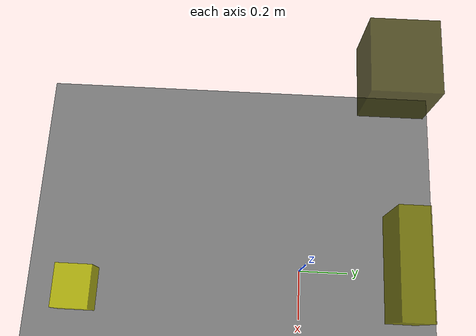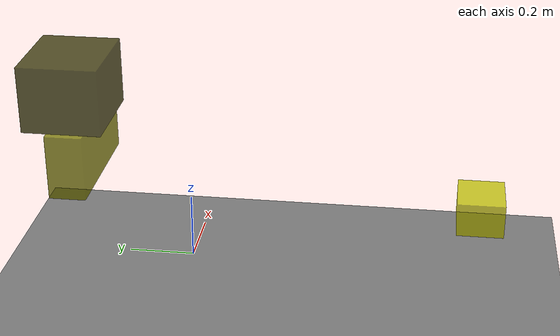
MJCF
<?xml version="1.0"?>
<mujoco model="obstacle_scene">
  <compiler angle="radian" coordinate="local"/>
  <option timestep="0.001" gravity="0 0 -9.81"/>

  <asset>
    <material name="obstacle_mat" rgba="0.8 0.8 0.0 0.8"/>
    <material name="ground_mat" rgba="0.5 0.5 0.5 1"/>
  </asset>

  <worldbody>
    <!-- Ground plane -->
    <geom name="ground" type="plane" size="3 3 0.1" material="ground_mat"/>

    <!-- Obstacles -->
    <body name="obstacle_0" pos="-0.517810 0.184719 0.777285">
      <geom name="obs_0" type="box" size="0.114941 0.100418 0.085661" rgba="0.2 0.2 0.0 0.8"/>
    </body>
    <body name="obstacle_1" pos="0.009560 0.332223 0.367835">
      <geom name="obs_1" type="box" size="0.196845 0.055164 0.099077" rgba="0.5 0.5 0.0 0.8"/>
    </body>
    <body name="obstacle_2" pos="0.124115 -0.885199 0.154355">
      <geom name="obs_2" type="box" size="0.084112 0.071892 0.053551" rgba="0.8 0.8 0.0 0.8"/>
    </body>
  </worldbody>
</mujoco>
